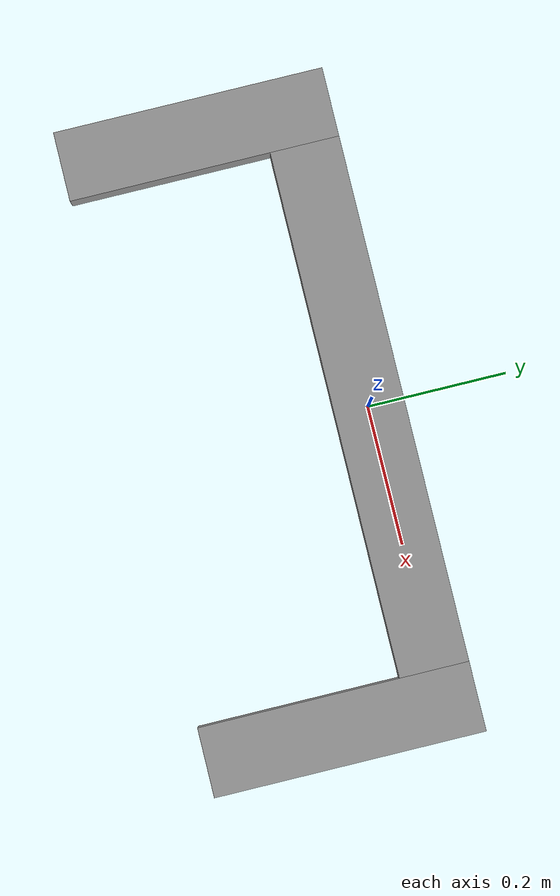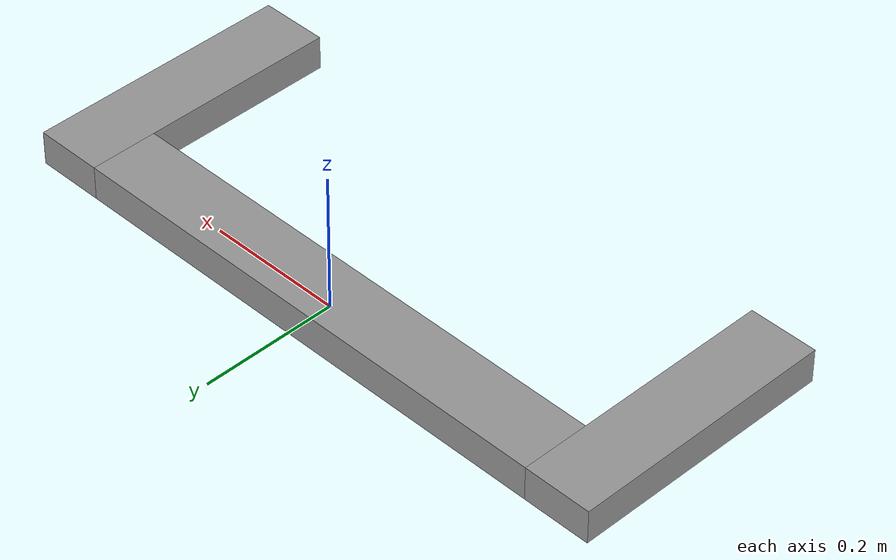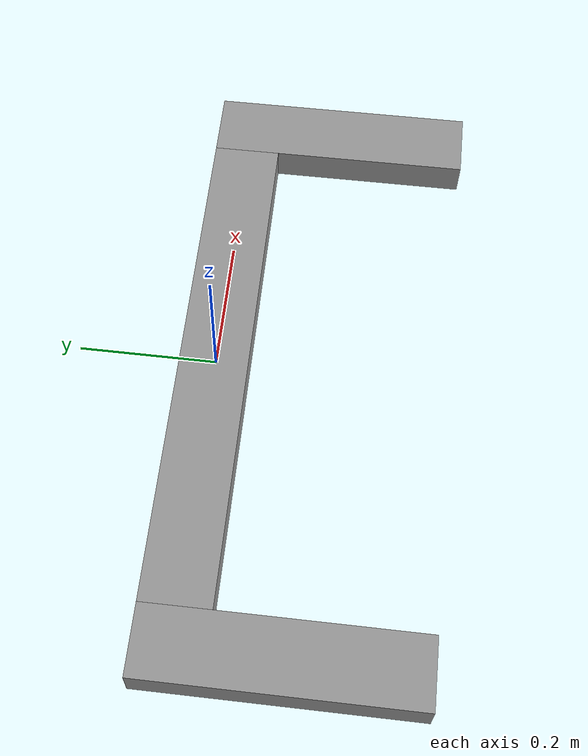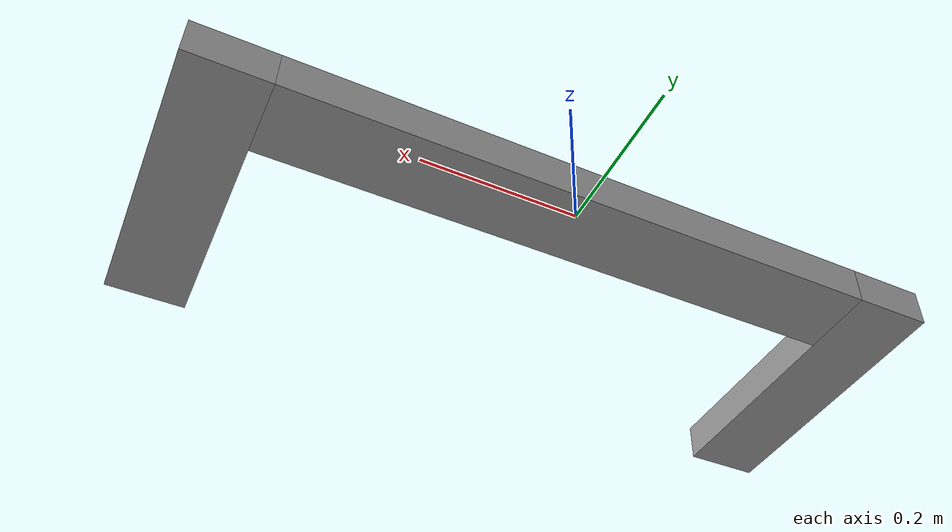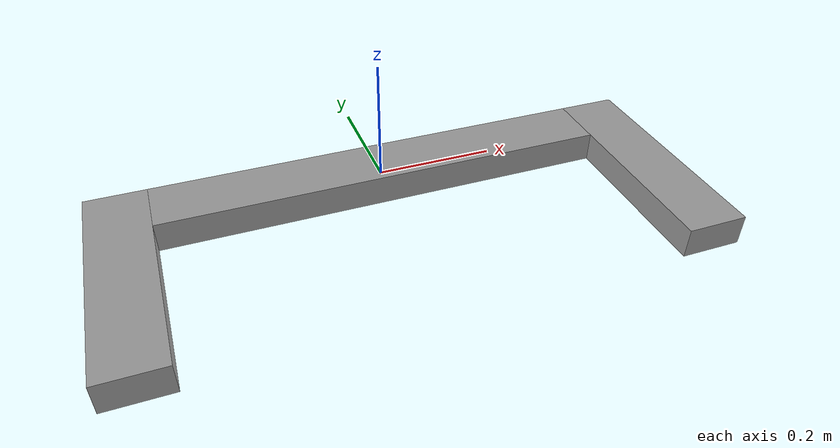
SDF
<?xml version='1.0'?>
<sdf version='1.7'>
  <model name="my_model">
    <pose>0 0 0.0 0 0 0</pose>
    <static>true</static>
    <link name='link'>
      <inertial>
        <pose>0 0 0 0 -0 0</pose>
        <mass>1.87</mass>
        <inertia>
          <ixx>0.01857</ixx>
          <ixy>0</ixy>
          <ixz>0</ixz>
          <iyy>0.015598</iyy>
          <iyz>0</iyz>
          <izz>0.00305</izz>
        </inertia>
      </inertial>
      <self_collide>0</self_collide>
      <enable_wind>0</enable_wind>
      <kinematic>0</kinematic>
      <pose>0 -0.154224 0 0 -0 0</pose>
      <gravity>1</gravity>
      <visual name='visual_3'>
        <cast_shadows>0</cast_shadows>
        <geometry>
          <box>
            <size>0.1 0.39 0.05</size>
          </box>
        </geometry>
        <material>
          <lighting>1</lighting>
          <script>
            <uri>file://media/materials/scripts/gazebo.material</uri>
            <name>Gazebo/Grey</name>
          </script>
          <shader type='pixel'>
            <normal_map>__default__</normal_map>
          </shader>
          <ambient>0.3 0.3 0.3 1</ambient>
          <diffuse>0.7 0.7 0.7 1</diffuse>
          <specular>0.01 0.01 0.01 1</specular>
          <emissive>0 0 0 1</emissive>
        </material>
        <pose>0.43 0.01 0 0 -0 0</pose>
        <transparency>0</transparency>
      </visual>
      <visual name='visual_4'>
        <cast_shadows>0</cast_shadows>
        <geometry>
          <box>
            <size>0.1 0.39 0.05</size>
          </box>
        </geometry>
        <material>
          <lighting>1</lighting>
          <script>
            <uri>file://media/materials/scripts/gazebo.material</uri>
            <name>Gazebo/Grey</name>
          </script>
          <shader type='pixel'>
            <normal_map>__default__</normal_map>
          </shader>
          <ambient>0.3 0.3 0.3 1</ambient>
          <diffuse>0.7 0.7 0.7 1</diffuse>
          <specular>0.01 0.01 0.01 1</specular>
          <emissive>0 0 0 1</emissive>
        </material>
        <pose>-0.43 0.01 0 0 -0 0</pose>
        <transparency>0</transparency>
      </visual>
      <visual name='visual_1'>
        <cast_shadows>0</cast_shadows>
        <geometry>
          <box>
            <size>0.76 0.1 0.05</size>
          </box>
        </geometry>
        <material>
          <lighting>1</lighting>
          <script>
            <uri>file://media/materials/scripts/gazebo.material</uri>
            <name>Gazebo/Grey</name>
          </script>
          <shader type='pixel'>
            <normal_map>__default__</normal_map>
          </shader>
          <ambient>0.3 0.3 0.3 1</ambient>
          <diffuse>0.7 0.7 0.7 1</diffuse>
          <specular>0.01 0.01 0.01 1</specular>
          <emissive>0 0 0 1</emissive>
        </material>
        <pose>0 0.155 0 0 -0 0</pose>
        <transparency>0</transparency>
      </visual>
      <collision name='collision_7'>
        <laser_retro>0</laser_retro>
        <max_contacts>10</max_contacts>
        <pose>0.43 0.01 0 0 -0 0</pose>
        <geometry>
          <box>
            <size>0.1 0.39 0.05</size>
          </box>
        </geometry>
        <surface>
          <friction>
            <ode>
              <mu>1</mu>
              <mu2>1</mu2>
              <fdir1>0 0 0</fdir1>
              <slip1>0</slip1>
              <slip2>0</slip2>
            </ode>
            <torsional>
              <coefficient>1</coefficient>
              <patch_radius>0</patch_radius>
              <surface_radius>0</surface_radius>
              <use_patch_radius>1</use_patch_radius>
              <ode>
                <slip>0</slip>
              </ode>
            </torsional>
          </friction>
          <bounce>
            <restitution_coefficient>0</restitution_coefficient>
            <threshold>1e+06</threshold>
          </bounce>
          <contact>
            <collide_without_contact>0</collide_without_contact>
            <collide_without_contact_bitmask>1</collide_without_contact_bitmask>
            <collide_bitmask>1</collide_bitmask>
            <ode>
              <soft_cfm>0</soft_cfm>
              <soft_erp>0.2</soft_erp>
              <kp>1e+13</kp>
              <kd>1</kd>
              <max_vel>0.01</max_vel>
              <min_depth>0</min_depth>
            </ode>
            <bullet>
              <split_impulse>1</split_impulse>
              <split_impulse_penetration_threshold>-0.01</split_impulse_penetration_threshold>
              <soft_cfm>0</soft_cfm>
              <soft_erp>0.2</soft_erp>
              <kp>1e+13</kp>
              <kd>1</kd>
            </bullet>
          </contact>
        </surface>
      </collision>
      <collision name='collision_8'>
        <laser_retro>0</laser_retro>
        <max_contacts>10</max_contacts>
        <pose>-0.43 0.01 0 0 -0 0</pose>
        <geometry>
          <box>
            <size>0.1 0.39 0.05</size>
          </box>
        </geometry>
        <surface>
          <friction>
            <ode>
              <mu>1</mu>
              <mu2>1</mu2>
              <fdir1>0 0 0</fdir1>
              <slip1>0</slip1>
              <slip2>0</slip2>
            </ode>
            <torsional>
              <coefficient>1</coefficient>
              <patch_radius>0</patch_radius>
              <surface_radius>0</surface_radius>
              <use_patch_radius>1</use_patch_radius>
              <ode>
                <slip>0</slip>
              </ode>
            </torsional>
          </friction>
          <bounce>
            <restitution_coefficient>0</restitution_coefficient>
            <threshold>1e+06</threshold>
          </bounce>
          <contact>
            <collide_without_contact>0</collide_without_contact>
            <collide_without_contact_bitmask>1</collide_without_contact_bitmask>
            <collide_bitmask>1</collide_bitmask>
            <ode>
              <soft_cfm>0</soft_cfm>
              <soft_erp>0.2</soft_erp>
              <kp>1e+13</kp>
              <kd>1</kd>
              <max_vel>0.01</max_vel>
              <min_depth>0</min_depth>
            </ode>
            <bullet>
              <split_impulse>1</split_impulse>
              <split_impulse_penetration_threshold>-0.01</split_impulse_penetration_threshold>
              <soft_cfm>0</soft_cfm>
              <soft_erp>0.2</soft_erp>
              <kp>1e+13</kp>
              <kd>1</kd>
            </bullet>
          </contact>
        </surface>
      </collision>
      <collision name='collision_6'>
        <laser_retro>0</laser_retro>
        <max_contacts>10</max_contacts>
        <pose>0 0.155 0 0 -0 0</pose>
        <geometry>
          <box>
            <size>0.76 0.1 0.05</size>
          </box>
        </geometry>
        <surface>
          <friction>
            <ode>
              <mu>1</mu>
              <mu2>1</mu2>
              <fdir1>0 0 0</fdir1>
              <slip1>0</slip1>
              <slip2>0</slip2>
            </ode>
            <torsional>
              <coefficient>1</coefficient>
              <patch_radius>0</patch_radius>
              <surface_radius>0</surface_radius>
              <use_patch_radius>1</use_patch_radius>
              <ode>
                <slip>0</slip>
              </ode>
            </torsional>
          </friction>
          <bounce>
            <restitution_coefficient>0</restitution_coefficient>
            <threshold>1e+06</threshold>
          </bounce>
          <contact>
            <collide_without_contact>0</collide_without_contact>
            <collide_without_contact_bitmask>1</collide_without_contact_bitmask>
            <collide_bitmask>1</collide_bitmask>
            <ode>
              <soft_cfm>0</soft_cfm>
              <soft_erp>0.2</soft_erp>
              <kp>1e+13</kp>
              <kd>1</kd>
              <max_vel>0.01</max_vel>
              <min_depth>0</min_depth>
            </ode>
            <bullet>
              <split_impulse>1</split_impulse>
              <split_impulse_penetration_threshold>-0.01</split_impulse_penetration_threshold>
              <soft_cfm>0</soft_cfm>
              <soft_erp>0.2</soft_erp>
              <kp>1e+13</kp>
              <kd>1</kd>
            </bullet>
          </contact>
        </surface>
      </collision>
    </link>
  </model>
</sdf>
